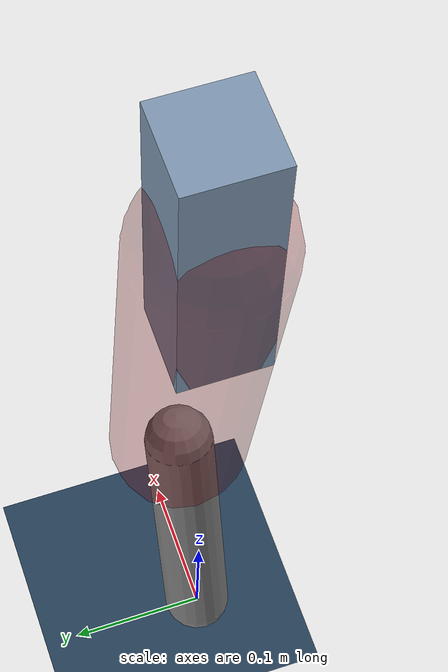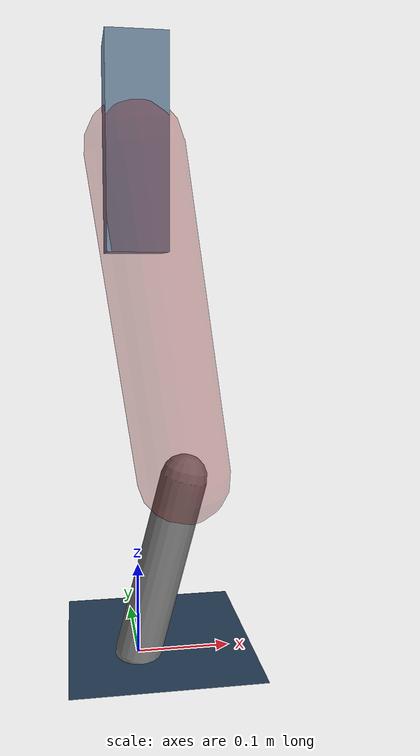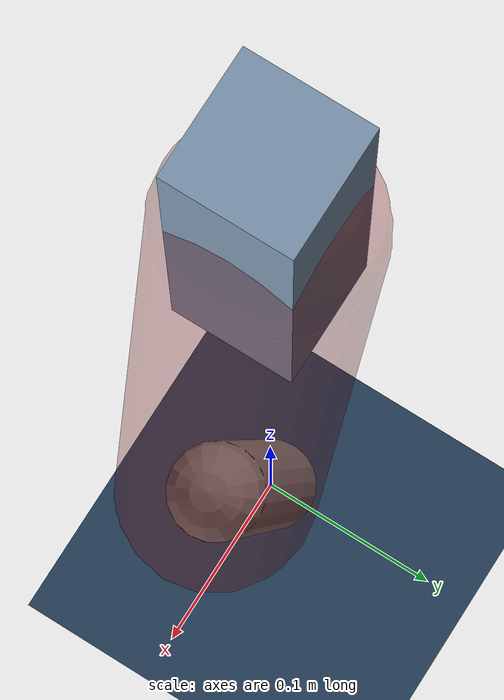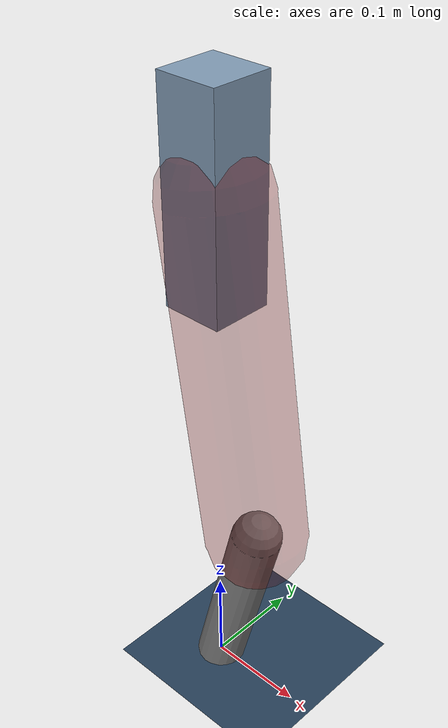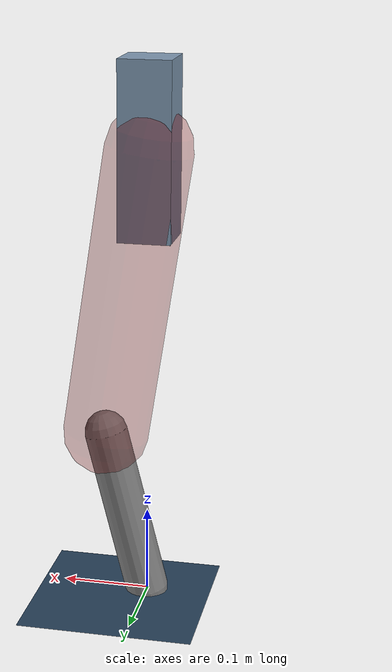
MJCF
<mujoco model="Hopper2D">
	<compiler inertiafromgeom="true" angle="radian" />
	<option timestep="0.001" integrator="implicit" cone="elliptic" solver="Newton" tolerance="1e-10" />

	<default>
		<geom contype="1" conaffinity="1" condim="3" friction="2 0.005 0.0001" solref="0.005 1" />
		<joint limited="true" damping="0.1" />
	</default>

	<asset>
		<texture name="skybox" type="skybox" builtin="gradient" rgb1=".4 .6 .8" rgb2="0 0 0" width="800" height="800" />
		<texture name="grid" type="2d" builtin="checker" rgb1=".1 .2 .3" rgb2=".2 .3 .4" width="300" height="300" mark="edge" markrgb=".2 .3 .4" />
		<material name="ground" texture="grid" texrepeat="1 1" texuniform="true" reflectance="0.1" />
		<material name="leg" rgba="0.5 0.6 0.7 1" />
	</asset>

	<worldbody>

		<geom name="floor" type="plane" size="5 5 0.25" material="ground" />

		<light directional="false" diffuse="0.8 0.8 0.8" specular="0.3 0.3 0.3" pos="0 0 2" dir="0 0 -1" />
		<light mode="targetbodycom" target="base" directional="false" diffuse="0.8 0.8 0.8" specular="0.3 0.3 0.3" pos="0 0 2" dir="0 0 -1" />

		<camera name="fixed" pos="0 -2 1" xyaxes="1 0 0 0 0 1" />
		<camera name="tracking" mode="trackcom" pos="0 -3 1" />

		<body name="root" pos="0 0 0.5280949335914176">
			<joint name="slide_x" type="slide" axis="1 0 0" range="-100 100" />
			<joint name="slide_z" type="slide" axis="0 0 1" range="0 10" />

			<body name="base" pos="0 0 0">
				<geom name="torso" type="box" size="0.03 0.03 0.1" mass="2.2830000000000004" material="leg" />

				<body name="link1" pos="0 0 0" euler="0 1.422402727625998 0">
					<joint type="hinge" axis="0 -1 0" pos="0 0 0" name="hinge1" limited="true" range="-3.14 3.14" stiffness="0" damping="0.1" />
					<geom name="thigh" type="capsule" fromto="0 0 0 0.3373199292747924 0 0" size="0.05" rgba="0.5 0 0 0.3" mass="1.0911958019694186" />

					<body name="link2" pos="0.3373199292747924 0 0" euler="0 0.3994222369841896 0">
						<joint type="hinge" axis="0 -1 0" pos="0 0 0" name="hinge2" limited="true" range="-3.14 3.14" stiffness="0" damping="0.1" />
						<geom name="shank" type="capsule" fromto="0 0 0 0.20077500431662523 0 0" size="0.025" mass="0.4015200034533002" />

					</body>
				</body>
			</body>
		</body>
	</worldbody>

	<actuator>
		<motor name="torque1" joint="hinge1" ctrlrange="-75.80342396728419 75.80342396728419" ctrllimited="true" gear="1" />
		<motor name="torque2" joint="hinge2" ctrlrange="-88.30616371308255 88.30616371308255" ctrllimited="true" gear="1" />
	</actuator>
</mujoco>
